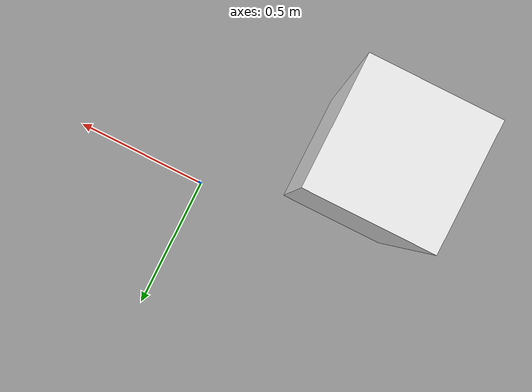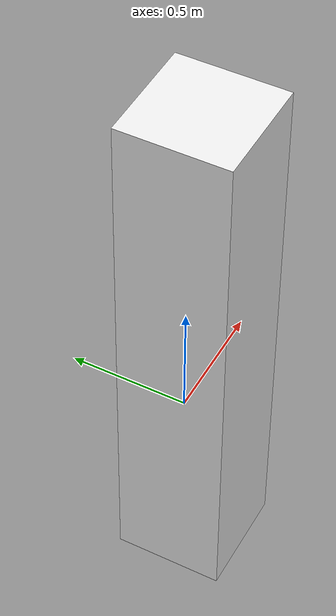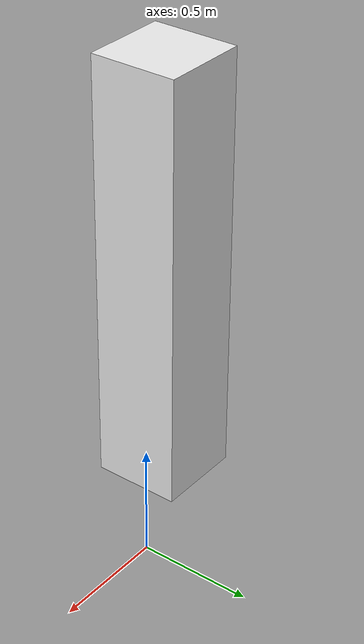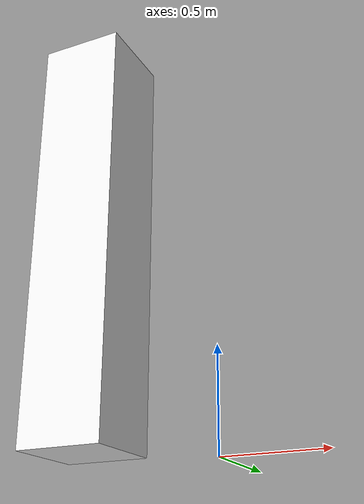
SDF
<?xml version="1.0" ?>
<sdf version="1.4">
  <model name="Tower">
    <static>true</static>

    <link name="tower">
    <pose>-0.5 -0.3 1 0 0 0</pose>
      <collision name="collision">
        <geometry>
            <box>
                <size> 0.4  0.4  2 </size>
            </box>
        </geometry>

       </collision>
      <visual name="visual">
        <geometry>
            <box>
                <size> 0.4  0.4  2 </size>
            </box>
        </geometry>

        <material>
          <script>
            <uri>file://media/materials/scripts/gazebo.material
            </uri>
            <name>Gazebo/White</name>
          </script>
        </material>
      </visual>
    </link>
  </model>
</sdf>
